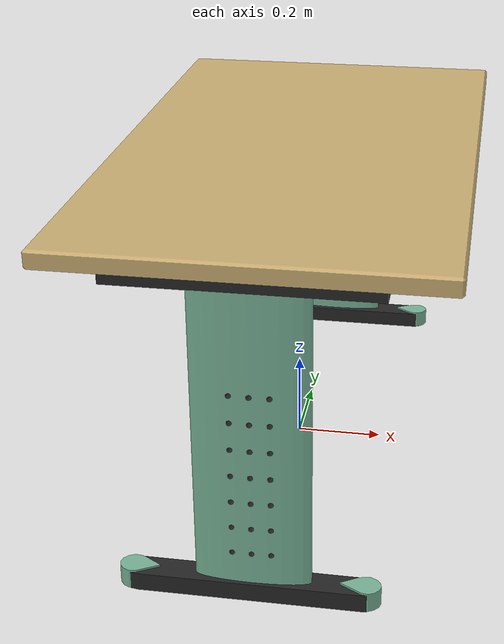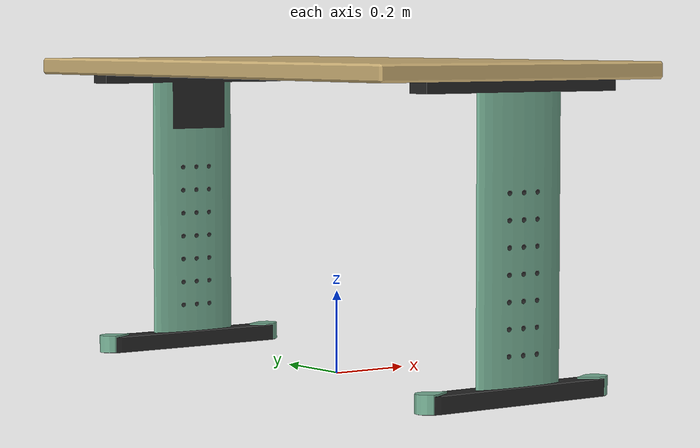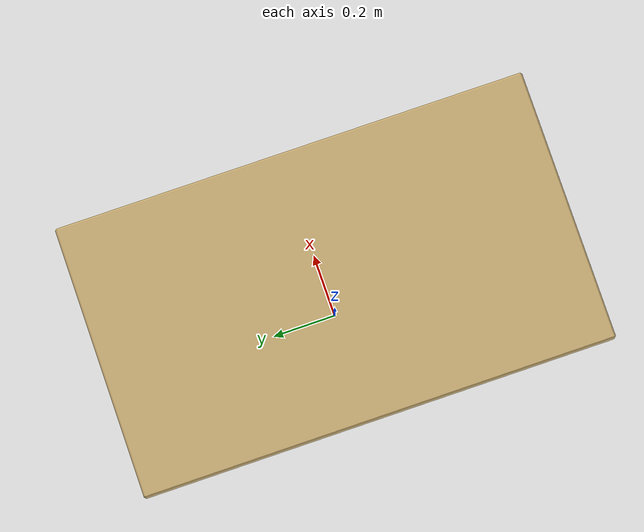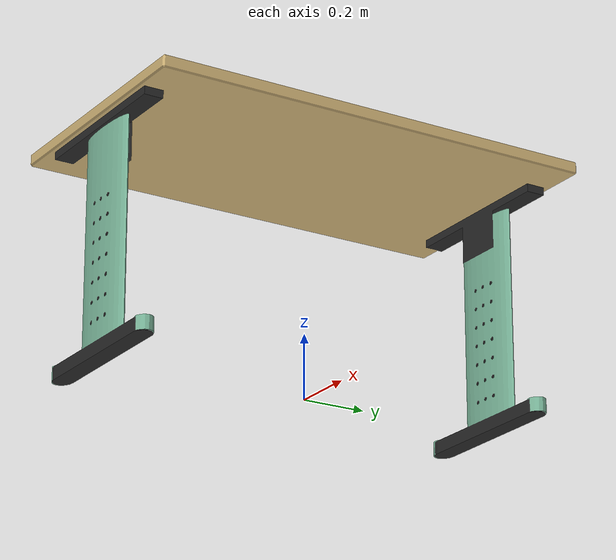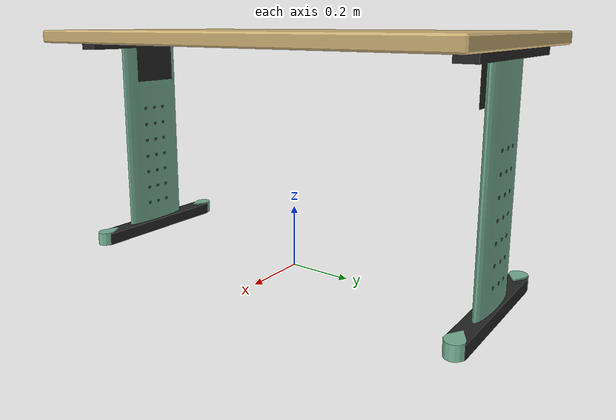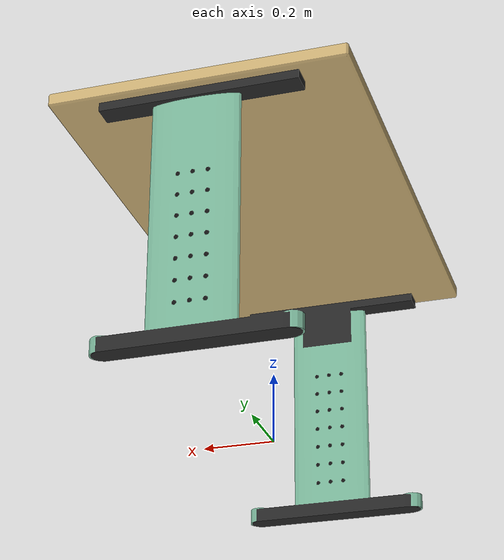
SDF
<?xml version="1.0" ?>
<sdf version="1.5">
  <model name="desk_shared">
    <link name="link">
      <pose>0 0 0 0 0 0</pose>
      <collision name="collision">
        <geometry>
          <mesh>
            <uri>model://desk_shared/meshes/model.dae</uri>
          </mesh>
        </geometry>
      </collision>
      <visual name="visual">
        <geometry>
          <mesh>
            <uri>model://desk_shared/meshes/model.dae</uri>
          </mesh>
        </geometry>
      </visual>
    </link>
    <static>1</static>
  </model>
</sdf>
